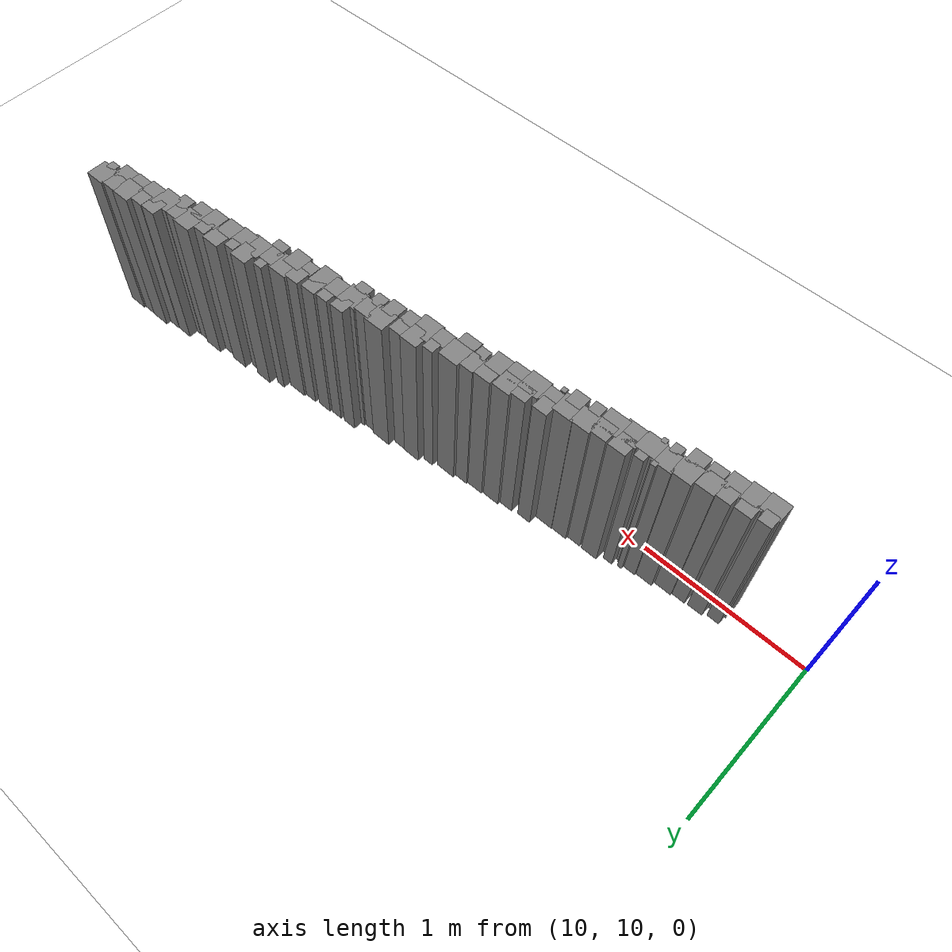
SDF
<sdf version="1.6">
 <world name="default">
  <model name="group_249">
   <pose>10.46 9.95 0.5 0 0 0</pose>
   <static>true</static>
   <link name="link">
    <collision name="collision"><geometry><box><size>0.0 0.0 1</size></box></geometry></collision>
    <visual name="visual">
     <geometry><box><size>0.0 0.0 1</size></box></geometry>
     <material><ambient>0.5 0.5 0.5 1</ambient></material>
    </visual>
   </link>
  </model>
  <model name="group_250">
   <pose>10.51 9.99 0.5 0 0 0</pose>
   <static>true</static>
   <link name="link">
    <collision name="collision">
     <geometry><box><size>0.10720809573338899 0.10720809573338899 1</size></box></geometry>
    </collision>
    <visual name="visual">
     <geometry><box><size>0.10720809573338899 0.10720809573338899 1</size></box></geometry>
     <material><ambient>0.5 0.5 0.5 1</ambient></material>
    </visual>
   </link>
  </model>
  <model name="group_251">
   <pose>10.50 10.06 0.5 0 0 0</pose>
   <static>true</static>
   <link name="link">
    <collision name="collision">
     <geometry><box><size>0.07280795788523292 0.07280795788523292 1</size></box></geometry>
    </collision>
    <visual name="visual">
     <geometry><box><size>0.07280795788523292 0.07280795788523292 1</size></box></geometry>
     <material><ambient>0.5 0.5 0.5 1</ambient></material>
    </visual>
   </link>
  </model>
  <model name="group_256">
   <pose>10.60 10.00 0.5 0 0 0</pose>
   <static>true</static>
   <link name="link">
    <collision name="collision">
     <geometry><box><size>0.11112489812802462 0.11112489812802462 1</size></box></geometry>
    </collision>
    <visual name="visual">
     <geometry><box><size>0.11112489812802462 0.11112489812802462 1</size></box></geometry>
     <material><ambient>0.5 0.5 0.5 1</ambient></material>
    </visual>
   </link>
  </model>
  <model name="group_257">
   <pose>10.60 10.07 0.5 0 0 0</pose>
   <static>true</static>
   <link name="link">
    <collision name="collision">
     <geometry><box><size>0.09070112511455061 0.09070112511455061 1</size></box></geometry>
    </collision>
    <visual name="visual">
     <geometry><box><size>0.09070112511455061 0.09070112511455061 1</size></box></geometry>
     <material><ambient>0.5 0.5 0.5 1</ambient></material>
    </visual>
   </link>
  </model>
  <model name="group_260">
   <pose>10.70 10.01 0.5 0 0 0</pose>
   <static>true</static>
   <link name="link">
    <collision name="collision">
     <geometry><box><size>0.10297681291020644 0.10297681291020644 1</size></box></geometry>
    </collision>
    <visual name="visual">
     <geometry><box><size>0.10297681291020644 0.10297681291020644 1</size></box></geometry>
     <material><ambient>0.5 0.5 0.5 1</ambient></material>
    </visual>
   </link>
  </model>
  <model name="group_261">
   <pose>10.70 10.08 0.5 0 0 0</pose>
   <static>true</static>
   <link name="link">
    <collision name="collision">
     <geometry><box><size>0.08105785199990004 0.08105785199990004 1</size></box></geometry>
    </collision>
    <visual name="visual">
     <geometry><box><size>0.08105785199990004 0.08105785199990004 1</size></box></geometry>
     <material><ambient>0.5 0.5 0.5 1</ambient></material>
    </visual>
   </link>
  </model>
  <model name="group_264">
   <pose>10.79 10.08 0.5 0 0 0</pose>
   <static>true</static>
   <link name="link">
    <collision name="collision">
     <geometry><box><size>0.10297681291020155 0.10297681291020155 1</size></box></geometry>
    </collision>
    <visual name="visual">
     <geometry><box><size>0.10297681291020155 0.10297681291020155 1</size></box></geometry>
     <material><ambient>0.5 0.5 0.5 1</ambient></material>
    </visual>
   </link>
  </model>
  <model name="group_265">
   <pose>10.80 10.02 0.5 0 0 0</pose>
   <static>true</static>
   <link name="link">
    <collision name="collision">
     <geometry><box><size>0.08502194062771413 0.08502194062771413 1</size></box></geometry>
    </collision>
    <visual name="visual">
     <geometry><box><size>0.08502194062771413 0.08502194062771413 1</size></box></geometry>
     <material><ambient>0.5 0.5 0.5 1</ambient></material>
    </visual>
   </link>
  </model>
  <model name="group_268">
   <pose>10.90 10.02 0.5 0 0 0</pose>
   <static>true</static>
   <link name="link">
    <collision name="collision">
     <geometry><box><size>0.09070112511455061 0.09070112511455061 1</size></box></geometry>
    </collision>
    <visual name="visual">
     <geometry><box><size>0.09070112511455061 0.09070112511455061 1</size></box></geometry>
     <material><ambient>0.5 0.5 0.5 1</ambient></material>
    </visual>
   </link>
  </model>
  <model name="group_269">
   <pose>10.90 10.10 0.5 0 0 0</pose>
   <static>true</static>
   <link name="link">
    <collision name="collision">
     <geometry><box><size>0.11218382099303449 0.11218382099303449 1</size></box></geometry>
    </collision>
    <visual name="visual">
     <geometry><box><size>0.11218382099303449 0.11218382099303449 1</size></box></geometry>
     <material><ambient>0.5 0.5 0.5 1</ambient></material>
    </visual>
   </link>
  </model>
  <model name="group_272">
   <pose>11.00 10.11 0.5 0 0 0</pose>
   <static>true</static>
   <link name="link">
    <collision name="collision">
     <geometry><box><size>0.11218382099302456 0.11218382099302456 1</size></box></geometry>
    </collision>
    <visual name="visual">
     <geometry><box><size>0.11218382099302456 0.11218382099302456 1</size></box></geometry>
     <material><ambient>0.5 0.5 0.5 1</ambient></material>
    </visual>
   </link>
  </model>
  <model name="group_273">
   <pose>11.00 10.04 0.5 0 0 0</pose>
   <static>true</static>
   <link name="link">
    <collision name="collision">
     <geometry><box><size>0.056280505116430554 0.056280505116430554 1</size></box></geometry>
    </collision>
    <visual name="visual">
     <geometry><box><size>0.056280505116430554 0.056280505116430554 1</size></box></geometry>
     <material><ambient>0.5 0.5 0.5 1</ambient></material>
    </visual>
   </link>
  </model>
  <model name="group_275">
   <pose>11.03 10.17 0.5 0 0 0</pose>
   <static>true</static>
   <link name="link">
    <collision name="collision">
     <geometry><box><size>0.02814025255821355 0.02814025255821355 1</size></box></geometry>
    </collision>
    <visual name="visual">
     <geometry><box><size>0.02814025255821355 0.02814025255821355 1</size></box></geometry>
     <material><ambient>0.5 0.5 0.5 1</ambient></material>
    </visual>
   </link>
  </model>
  <model name="group_278">
   <pose>11.07 10.04 0.5 0 0 0</pose>
   <static>true</static>
   <link name="link">
    <collision name="collision">
     <geometry><box><size>0.02814025255821355 0.02814025255821355 1</size></box></geometry>
    </collision>
    <visual name="visual">
     <geometry><box><size>0.02814025255821355 0.02814025255821355 1</size></box></geometry>
     <material><ambient>0.5 0.5 0.5 1</ambient></material>
    </visual>
   </link>
  </model>
  <model name="group_279">
   <pose>11.10 10.10 0.5 0 0 0</pose>
   <static>true</static>
   <link name="link">
    <collision name="collision">
     <geometry><box><size>0.11145209213377104 0.11145209213377104 1</size></box></geometry>
    </collision>
    <visual name="visual">
     <geometry><box><size>0.11145209213377104 0.11145209213377104 1</size></box></geometry>
     <material><ambient>0.5 0.5 0.5 1</ambient></material>
    </visual>
   </link>
  </model>
  <model name="group_280">
   <pose>11.10 10.17 0.5 0 0 0</pose>
   <static>true</static>
   <link name="link">
    <collision name="collision">
     <geometry><box><size>0.05628050511643065 0.05628050511643065 1</size></box></geometry>
    </collision>
    <visual name="visual">
     <geometry><box><size>0.05628050511643065 0.05628050511643065 1</size></box></geometry>
     <material><ambient>0.5 0.5 0.5 1</ambient></material>
    </visual>
   </link>
  </model>
  <model name="group_285">
   <pose>11.20 10.11 0.5 0 0 0</pose>
   <static>true</static>
   <link name="link">
    <collision name="collision">
     <geometry><box><size>0.11884310777185958 0.11884310777185958 1</size></box></geometry>
    </collision>
    <visual name="visual">
     <geometry><box><size>0.11884310777185958 0.11884310777185958 1</size></box></geometry>
     <material><ambient>0.5 0.5 0.5 1</ambient></material>
    </visual>
   </link>
  </model>
  <model name="group_286">
   <pose>11.20 10.18 0.5 0 0 0</pose>
   <static>true</static>
   <link name="link">
    <collision name="collision">
     <geometry><box><size>0.1011409347177498 0.1011409347177498 1</size></box></geometry>
    </collision>
    <visual name="visual">
     <geometry><box><size>0.1011409347177498 0.1011409347177498 1</size></box></geometry>
     <material><ambient>0.5 0.5 0.5 1</ambient></material>
    </visual>
   </link>
  </model>
  <model name="group_289">
   <pose>11.30 10.12 0.5 0 0 0</pose>
   <static>true</static>
   <link name="link">
    <collision name="collision">
     <geometry><box><size>0.11882612832554124 0.11882612832554124 1</size></box></geometry>
    </collision>
    <visual name="visual">
     <geometry><box><size>0.11882612832554124 0.11882612832554124 1</size></box></geometry>
     <material><ambient>0.5 0.5 0.5 1</ambient></material>
    </visual>
   </link>
  </model>
  <model name="group_290">
   <pose>11.31 10.18 0.5 0 0 0</pose>
   <static>true</static>
   <link name="link">
    <collision name="collision">
     <geometry><box><size>0.09983600535791982 0.09983600535791982 1</size></box></geometry>
    </collision>
    <visual name="visual">
     <geometry><box><size>0.09983600535791982 0.09983600535791982 1</size></box></geometry>
     <material><ambient>0.5 0.5 0.5 1</ambient></material>
    </visual>
   </link>
  </model>
  <model name="group_293">
   <pose>11.40 10.19 0.5 0 0 0</pose>
   <static>true</static>
   <link name="link">
    <collision name="collision">
     <geometry><box><size>0.11218382099302088 0.11218382099302088 1</size></box></geometry>
    </collision>
    <visual name="visual">
     <geometry><box><size>0.11218382099302088 0.11218382099302088 1</size></box></geometry>
     <material><ambient>0.5 0.5 0.5 1</ambient></material>
    </visual>
   </link>
  </model>
  <model name="group_294">
   <pose>11.40 10.11 0.5 0 0 0</pose>
   <static>true</static>
   <link name="link">
    <collision name="collision">
     <geometry><box><size>0.06413786030772303 0.06413786030772303 1</size></box></geometry>
    </collision>
    <visual name="visual">
     <geometry><box><size>0.06413786030772303 0.06413786030772303 1</size></box></geometry>
     <material><ambient>0.5 0.5 0.5 1</ambient></material>
    </visual>
   </link>
  </model>
  <model name="group_297">
   <pose>11.50 10.13 0.5 0 0 0</pose>
   <static>true</static>
   <link name="link">
    <collision name="collision">
     <geometry><box><size>0.0844207576746442 0.0844207576746442 1</size></box></geometry>
    </collision>
    <visual name="visual">
     <geometry><box><size>0.0844207576746442 0.0844207576746442 1</size></box></geometry>
     <material><ambient>0.5 0.5 0.5 1</ambient></material>
    </visual>
   </link>
  </model>
  <model name="group_298">
   <pose>11.50 10.19 0.5 0 0 0</pose>
   <static>true</static>
   <link name="link">
    <collision name="collision">
     <geometry><box><size>0.11941295585761501 0.11941295585761501 1</size></box></geometry>
    </collision>
    <visual name="visual">
     <geometry><box><size>0.11941295585761501 0.11941295585761501 1</size></box></geometry>
     <material><ambient>0.5 0.5 0.5 1</ambient></material>
    </visual>
   </link>
  </model>
  <model name="group_299">
   <pose>11.52 10.26 0.5 0 0 0</pose>
   <static>true</static>
   <link name="link">
    <collision name="collision"><geometry><box><size>0.0 0.0 1</size></box></geometry></collision>
    <visual name="visual">
     <geometry><box><size>0.0 0.0 1</size></box></geometry>
     <material><ambient>0.5 0.5 0.5 1</ambient></material>
    </visual>
   </link>
  </model>
  <model name="group_302">
   <pose>11.59 10.26 0.5 0 0 0</pose>
   <static>true</static>
   <link name="link">
    <collision name="collision">
     <geometry><box><size>0.08442075767464065 0.08442075767464065 1</size></box></geometry>
    </collision>
    <visual name="visual">
     <geometry><box><size>0.08442075767464065 0.08442075767464065 1</size></box></geometry>
     <material><ambient>0.5 0.5 0.5 1</ambient></material>
    </visual>
   </link>
  </model>
  <model name="group_303">
   <pose>11.58 10.13 0.5 0 0 0</pose>
   <static>true</static>
   <link name="link">
    <collision name="collision">
     <geometry><box><size>0.02814025255821355 0.02814025255821355 1</size></box></geometry>
    </collision>
    <visual name="visual">
     <geometry><box><size>0.02814025255821355 0.02814025255821355 1</size></box></geometry>
     <material><ambient>0.5 0.5 0.5 1</ambient></material>
    </visual>
   </link>
  </model>
  <model name="group_304">
   <pose>11.60 10.20 0.5 0 0 0</pose>
   <static>true</static>
   <link name="link">
    <collision name="collision">
     <geometry><box><size>0.09919226406566595 0.09919226406566595 1</size></box></geometry>
    </collision>
    <visual name="visual">
     <geometry><box><size>0.09919226406566595 0.09919226406566595 1</size></box></geometry>
     <material><ambient>0.5 0.5 0.5 1</ambient></material>
    </visual>
   </link>
  </model>
  <model name="group_307">
   <pose>11.70 10.20 0.5 0 0 0</pose>
   <static>true</static>
   <link name="link">
    <collision name="collision">
     <geometry><box><size>0.11941295585761501 0.11941295585761501 1</size></box></geometry>
    </collision>
    <visual name="visual">
     <geometry><box><size>0.11941295585761501 0.11941295585761501 1</size></box></geometry>
     <material><ambient>0.5 0.5 0.5 1</ambient></material>
    </visual>
   </link>
  </model>
  <model name="group_308">
   <pose>11.71 10.27 0.5 0 0 0</pose>
   <static>true</static>
   <link name="link">
    <collision name="collision">
     <geometry><box><size>0.08785281721401302 0.08785281721401302 1</size></box></geometry>
    </collision>
    <visual name="visual">
     <geometry><box><size>0.08785281721401302 0.08785281721401302 1</size></box></geometry>
     <material><ambient>0.5 0.5 0.5 1</ambient></material>
    </visual>
   </link>
  </model>
  <model name="group_311">
   <pose>11.80 10.28 0.5 0 0 0</pose>
   <static>true</static>
   <link name="link">
    <collision name="collision">
     <geometry><box><size>0.10491580295588307 0.10491580295588307 1</size></box></geometry>
    </collision>
    <visual name="visual">
     <geometry><box><size>0.10491580295588307 0.10491580295588307 1</size></box></geometry>
     <material><ambient>0.5 0.5 0.5 1</ambient></material>
    </visual>
   </link>
  </model>
  <model name="group_312">
   <pose>11.80 10.21 0.5 0 0 0</pose>
   <static>true</static>
   <link name="link">
    <collision name="collision">
     <geometry><box><size>0.10881582679462061 0.10881582679462061 1</size></box></geometry>
    </collision>
    <visual name="visual">
     <geometry><box><size>0.10881582679462061 0.10881582679462061 1</size></box></geometry>
     <material><ambient>0.5 0.5 0.5 1</ambient></material>
    </visual>
   </link>
  </model>
  <model name="group_315">
   <pose>11.90 10.22 0.5 0 0 0</pose>
   <static>true</static>
   <link name="link">
    <collision name="collision">
     <geometry><box><size>0.10727440747194315 0.10727440747194315 1</size></box></geometry>
    </collision>
    <visual name="visual">
     <geometry><box><size>0.10727440747194315 0.10727440747194315 1</size></box></geometry>
     <material><ambient>0.5 0.5 0.5 1</ambient></material>
    </visual>
   </link>
  </model>
  <model name="group_316">
   <pose>11.91 10.29 0.5 0 0 0</pose>
   <static>true</static>
   <link name="link">
    <collision name="collision">
     <geometry><box><size>0.10297681291020826 0.10297681291020826 1</size></box></geometry>
    </collision>
    <visual name="visual">
     <geometry><box><size>0.10297681291020826 0.10297681291020826 1</size></box></geometry>
     <material><ambient>0.5 0.5 0.5 1</ambient></material>
    </visual>
   </link>
  </model>
  <model name="group_319">
   <pose>12.00 10.23 0.5 0 0 0</pose>
   <static>true</static>
   <link name="link">
    <collision name="collision">
     <geometry><box><size>0.06413786030771806 0.06413786030771806 1</size></box></geometry>
    </collision>
    <visual name="visual">
     <geometry><box><size>0.06413786030771806 0.06413786030771806 1</size></box></geometry>
     <material><ambient>0.5 0.5 0.5 1</ambient></material>
    </visual>
   </link>
  </model>
  <model name="group_320">
   <pose>12.01 10.30 0.5 0 0 0</pose>
   <static>true</static>
   <link name="link">
    <collision name="collision">
     <geometry><box><size>0.10185609435833401 0.10185609435833401 1</size></box></geometry>
    </collision>
    <visual name="visual">
     <geometry><box><size>0.10185609435833401 0.10185609435833401 1</size></box></geometry>
     <material><ambient>0.5 0.5 0.5 1</ambient></material>
    </visual>
   </link>
  </model>
  <model name="group_323">
   <pose>12.09 10.24 0.5 0 0 0</pose>
   <static>true</static>
   <link name="link">
    <collision name="collision">
     <geometry><box><size>0.10632897044420112 0.10632897044420112 1</size></box></geometry>
    </collision>
    <visual name="visual">
     <geometry><box><size>0.10632897044420112 0.10632897044420112 1</size></box></geometry>
     <material><ambient>0.5 0.5 0.5 1</ambient></material>
    </visual>
   </link>
  </model>
  <model name="group_324">
   <pose>12.10 10.31 0.5 0 0 0</pose>
   <static>true</static>
   <link name="link">
    <collision name="collision">
     <geometry><box><size>0.11941295585761501 0.11941295585761501 1</size></box></geometry>
    </collision>
    <visual name="visual">
     <geometry><box><size>0.11941295585761501 0.11941295585761501 1</size></box></geometry>
     <material><ambient>0.5 0.5 0.5 1</ambient></material>
    </visual>
   </link>
  </model>
  <model name="group_327">
   <pose>12.17 10.25 0.5 0 0 0</pose>
   <static>true</static>
   <link name="link">
    <collision name="collision"><geometry><box><size>0.0 0.0 1</size></box></geometry></collision>
    <visual name="visual">
     <geometry><box><size>0.0 0.0 1</size></box></geometry>
     <material><ambient>0.5 0.5 0.5 1</ambient></material>
    </visual>
   </link>
  </model>
  <model name="group_328">
   <pose>12.20 10.29 0.5 0 0 0</pose>
   <static>true</static>
   <link name="link">
    <collision name="collision">
     <geometry><box><size>0.09244449216997254 0.09244449216997254 1</size></box></geometry>
    </collision>
    <visual name="visual">
     <geometry><box><size>0.09244449216997254 0.09244449216997254 1</size></box></geometry>
     <material><ambient>0.5 0.5 0.5 1</ambient></material>
    </visual>
   </link>
  </model>
  <model name="group_329">
   <pose>12.21 10.36 0.5 0 0 0</pose>
   <static>true</static>
   <link name="link">
    <collision name="collision">
     <geometry><box><size>0.06413786030771658 0.06413786030771658 1</size></box></geometry>
    </collision>
    <visual name="visual">
     <geometry><box><size>0.06413786030771658 0.06413786030771658 1</size></box></geometry>
     <material><ambient>0.5 0.5 0.5 1</ambient></material>
    </visual>
   </link>
  </model>
  <model name="group_332">
   <pose>12.30 10.30 0.5 0 0 0</pose>
   <static>true</static>
   <link name="link">
    <collision name="collision">
     <geometry><box><size>0.12787992062458453 0.12787992062458453 1</size></box></geometry>
    </collision>
    <visual name="visual">
     <geometry><box><size>0.12787992062458453 0.12787992062458453 1</size></box></geometry>
     <material><ambient>0.5 0.5 0.5 1</ambient></material>
    </visual>
   </link>
  </model>
  <model name="group_333">
   <pose>12.31 10.37 0.5 0 0 0</pose>
   <static>true</static>
   <link name="link">
    <collision name="collision">
     <geometry><box><size>0.10614484965121197 0.10614484965121197 1</size></box></geometry>
    </collision>
    <visual name="visual">
     <geometry><box><size>0.10614484965121197 0.10614484965121197 1</size></box></geometry>
     <material><ambient>0.5 0.5 0.5 1</ambient></material>
    </visual>
   </link>
  </model>
  <model name="group_336">
   <pose>12.40 10.31 0.5 0 0 0</pose>
   <static>true</static>
   <link name="link">
    <collision name="collision">
     <geometry><box><size>0.07960863723841435 0.07960863723841435 1</size></box></geometry>
    </collision>
    <visual name="visual">
     <geometry><box><size>0.07960863723841435 0.07960863723841435 1</size></box></geometry>
     <material><ambient>0.5 0.5 0.5 1</ambient></material>
    </visual>
   </link>
  </model>
  <model name="group_337">
   <pose>12.40 10.38 0.5 0 0 0</pose>
   <static>true</static>
   <link name="link">
    <collision name="collision">
     <geometry><box><size>0.07960863723840898 0.07960863723840898 1</size></box></geometry>
    </collision>
    <visual name="visual">
     <geometry><box><size>0.07960863723840898 0.07960863723840898 1</size></box></geometry>
     <material><ambient>0.5 0.5 0.5 1</ambient></material>
    </visual>
   </link>
  </model>
  <model name="group_340">
   <pose>12.50 10.32 0.5 0 0 0</pose>
   <static>true</static>
   <link name="link">
    <collision name="collision">
     <geometry><box><size>0.0907011251145563 0.0907011251145563 1</size></box></geometry>
    </collision>
    <visual name="visual">
     <geometry><box><size>0.0907011251145563 0.0907011251145563 1</size></box></geometry>
     <material><ambient>0.5 0.5 0.5 1</ambient></material>
    </visual>
   </link>
  </model>
  <model name="group_341">
   <pose>12.51 10.40 0.5 0 0 0</pose>
   <static>true</static>
   <link name="link">
    <collision name="collision">
     <geometry><box><size>0.12039171518390318 0.12039171518390318 1</size></box></geometry>
    </collision>
    <visual name="visual">
     <geometry><box><size>0.12039171518390318 0.12039171518390318 1</size></box></geometry>
     <material><ambient>0.5 0.5 0.5 1</ambient></material>
    </visual>
   </link>
  </model>
  <model name="group_344">
   <pose>12.59 10.33 0.5 0 0 0</pose>
   <static>true</static>
   <link name="link">
    <collision name="collision">
     <geometry><box><size>0.07280795788523782 0.07280795788523782 1</size></box></geometry>
    </collision>
    <visual name="visual">
     <geometry><box><size>0.07280795788523782 0.07280795788523782 1</size></box></geometry>
     <material><ambient>0.5 0.5 0.5 1</ambient></material>
    </visual>
   </link>
  </model>
  <model name="group_345">
   <pose>12.60 10.40 0.5 0 0 0</pose>
   <static>true</static>
   <link name="link">
    <collision name="collision">
     <geometry><box><size>0.09919226406567094 0.09919226406567094 1</size></box></geometry>
    </collision>
    <visual name="visual">
     <geometry><box><size>0.09919226406567094 0.09919226406567094 1</size></box></geometry>
     <material><ambient>0.5 0.5 0.5 1</ambient></material>
    </visual>
   </link>
  </model>
  <model name="group_348">
   <pose>12.70 10.34 0.5 0 0 0</pose>
   <static>true</static>
   <link name="link">
    <collision name="collision">
     <geometry><box><size>0.0844207576746442 0.0844207576746442 1</size></box></geometry>
    </collision>
    <visual name="visual">
     <geometry><box><size>0.0844207576746442 0.0844207576746442 1</size></box></geometry>
     <material><ambient>0.5 0.5 0.5 1</ambient></material>
    </visual>
   </link>
  </model>
  <model name="group_349">
   <pose>12.70 10.40 0.5 0 0 0</pose>
   <static>true</static>
   <link name="link">
    <collision name="collision">
     <geometry><box><size>0.11941295585761733 0.11941295585761733 1</size></box></geometry>
    </collision>
    <visual name="visual">
     <geometry><box><size>0.11941295585761733 0.11941295585761733 1</size></box></geometry>
     <material><ambient>0.5 0.5 0.5 1</ambient></material>
    </visual>
   </link>
  </model>
  <model name="group_350">
   <pose>12.71 10.47 0.5 0 0 0</pose>
   <static>true</static>
   <link name="link">
    <collision name="collision">
     <geometry><box><size>0.0844207576746442 0.0844207576746442 1</size></box></geometry>
    </collision>
    <visual name="visual">
     <geometry><box><size>0.0844207576746442 0.0844207576746442 1</size></box></geometry>
     <material><ambient>0.5 0.5 0.5 1</ambient></material>
    </visual>
   </link>
  </model>
  <model name="group_353">
   <pose>12.80 10.41 0.5 0 0 0</pose>
   <static>true</static>
   <link name="link">
    <collision name="collision">
     <geometry><box><size>0.09919226406566818 0.09919226406566818 1</size></box></geometry>
    </collision>
    <visual name="visual">
     <geometry><box><size>0.09919226406566818 0.09919226406566818 1</size></box></geometry>
     <material><ambient>0.5 0.5 0.5 1</ambient></material>
    </visual>
   </link>
  </model>
  <model name="group_354">
   <pose>12.81 10.48 0.5 0 0 0</pose>
   <static>true</static>
   <link name="link">
    <collision name="collision">
     <geometry><box><size>0.07280795788523782 0.07280795788523782 1</size></box></geometry>
    </collision>
    <visual name="visual">
     <geometry><box><size>0.07280795788523782 0.07280795788523782 1</size></box></geometry>
     <material><ambient>0.5 0.5 0.5 1</ambient></material>
    </visual>
   </link>
  </model>
  <model name="group_356">
   <pose>12.89 10.41 0.5 0 0 0</pose>
   <static>true</static>
   <link name="link">
    <collision name="collision">
     <geometry><box><size>0.12039171518390533 0.12039171518390533 1</size></box></geometry>
    </collision>
    <visual name="visual">
     <geometry><box><size>0.12039171518390533 0.12039171518390533 1</size></box></geometry>
     <material><ambient>0.5 0.5 0.5 1</ambient></material>
    </visual>
   </link>
  </model>
  <model name="group_357">
   <pose>12.90 10.48 0.5 0 0 0</pose>
   <static>true</static>
   <link name="link">
    <collision name="collision">
     <geometry><box><size>0.0907011251145563 0.0907011251145563 1</size></box></geometry>
    </collision>
    <visual name="visual">
     <geometry><box><size>0.0907011251145563 0.0907011251145563 1</size></box></geometry>
     <material><ambient>0.5 0.5 0.5 1</ambient></material>
    </visual>
   </link>
  </model>
  <model name="group_361">
   <pose>12.99 10.42 0.5 0 0 0</pose>
   <static>true</static>
   <link name="link">
    <collision name="collision">
     <geometry><box><size>0.07321409456274253 0.07321409456274253 1</size></box></geometry>
    </collision>
    <visual name="visual">
     <geometry><box><size>0.07321409456274253 0.07321409456274253 1</size></box></geometry>
     <material><ambient>0.5 0.5 0.5 1</ambient></material>
    </visual>
   </link>
  </model>
  <model name="group_362">
   <pose>13.01 10.49 0.5 0 0 0</pose>
   <static>true</static>
   <link name="link">
    <collision name="collision">
     <geometry><box><size>0.09065163049001222 0.09065163049001222 1</size></box></geometry>
    </collision>
    <visual name="visual">
     <geometry><box><size>0.09065163049001222 0.09065163049001222 1</size></box></geometry>
     <material><ambient>0.5 0.5 0.5 1</ambient></material>
    </visual>
   </link>
  </model>
  <model name="group_363">
   <pose>13.08 10.42 0.5 0 0 0</pose>
   <static>true</static>
   <link name="link">
    <collision name="collision">
     <geometry><box><size>0.10632897044419762 0.10632897044419762 1</size></box></geometry>
    </collision>
    <visual name="visual">
     <geometry><box><size>0.10632897044419762 0.10632897044419762 1</size></box></geometry>
     <material><ambient>0.5 0.5 0.5 1</ambient></material>
    </visual>
   </link>
  </model>
  <model name="group_364">
   <pose>13.10 10.49 0.5 0 0 0</pose>
   <static>true</static>
   <link name="link">
    <collision name="collision">
     <geometry><box><size>0.11941295585761305 0.11941295585761305 1</size></box></geometry>
    </collision>
    <visual name="visual">
     <geometry><box><size>0.11941295585761305 0.11941295585761305 1</size></box></geometry>
     <material><ambient>0.5 0.5 0.5 1</ambient></material>
    </visual>
   </link>
  </model>
  <model name="group_369">
   <pose>13.21 10.43 0.5 0 0 0</pose>
   <static>true</static>
   <link name="link">
    <collision name="collision">
     <geometry><box><size>0.0844207576746441 0.0844207576746441 1</size></box></geometry>
    </collision>
    <visual name="visual">
     <geometry><box><size>0.0844207576746441 0.0844207576746441 1</size></box></geometry>
     <material><ambient>0.5 0.5 0.5 1</ambient></material>
    </visual>
   </link>
  </model>
  <model name="group_370">
   <pose>13.20 10.49 0.5 0 0 0</pose>
   <static>true</static>
   <link name="link">
    <collision name="collision">
     <geometry><box><size>0.09919226406566373 0.09919226406566373 1</size></box></geometry>
    </collision>
    <visual name="visual">
     <geometry><box><size>0.09919226406566373 0.09919226406566373 1</size></box></geometry>
     <material><ambient>0.5 0.5 0.5 1</ambient></material>
    </visual>
   </link>
  </model>
  <model name="group_371">
   <pose>13.20 10.56 0.5 0 0 0</pose>
   <static>true</static>
   <link name="link">
    <collision name="collision">
     <geometry><box><size>0.0562805051164271 0.0562805051164271 1</size></box></geometry>
    </collision>
    <visual name="visual">
     <geometry><box><size>0.0562805051164271 0.0562805051164271 1</size></box></geometry>
     <material><ambient>0.5 0.5 0.5 1</ambient></material>
    </visual>
   </link>
  </model>
  <model name="group_372">
   <pose>13.30 10.50 0.5 0 0 0</pose>
   <static>true</static>
   <link name="link">
    <collision name="collision">
     <geometry><box><size>0.11941295585762002 0.11941295585762002 1</size></box></geometry>
    </collision>
    <visual name="visual">
     <geometry><box><size>0.11941295585762002 0.11941295585762002 1</size></box></geometry>
     <material><ambient>0.5 0.5 0.5 1</ambient></material>
    </visual>
   </link>
  </model>
  <model name="group_373">
   <pose>13.31 10.57 0.5 0 0 0</pose>
   <static>true</static>
   <link name="link">
    <collision name="collision">
     <geometry><box><size>0.10632897044420112 0.10632897044420112 1</size></box></geometry>
    </collision>
    <visual name="visual">
     <geometry><box><size>0.10632897044420112 0.10632897044420112 1</size></box></geometry>
     <material><ambient>0.5 0.5 0.5 1</ambient></material>
    </visual>
   </link>
  </model>
  <model name="group_378">
   <pose>13.39 10.50 0.5 0 0 0</pose>
   <static>true</static>
   <link name="link">
    <collision name="collision">
     <geometry><box><size>0.10185609435834389 0.10185609435834389 1</size></box></geometry>
    </collision>
    <visual name="visual">
     <geometry><box><size>0.10185609435834389 0.10185609435834389 1</size></box></geometry>
     <material><ambient>0.5 0.5 0.5 1</ambient></material>
    </visual>
   </link>
  </model>
  <model name="group_379">
   <pose>13.40 10.57 0.5 0 0 0</pose>
   <static>true</static>
   <link name="link">
    <collision name="collision">
     <geometry><box><size>0.06413786030771658 0.06413786030771658 1</size></box></geometry>
    </collision>
    <visual name="visual">
     <geometry><box><size>0.06413786030771658 0.06413786030771658 1</size></box></geometry>
     <material><ambient>0.5 0.5 0.5 1</ambient></material>
    </visual>
   </link>
  </model>
  <model name="group_380">
   <pose>13.49 10.51 0.5 0 0 0</pose>
   <static>true</static>
   <link name="link">
    <collision name="collision">
     <geometry><box><size>0.10297681291020461 0.10297681291020461 1</size></box></geometry>
    </collision>
    <visual name="visual">
     <geometry><box><size>0.10297681291020461 0.10297681291020461 1</size></box></geometry>
     <material><ambient>0.5 0.5 0.5 1</ambient></material>
    </visual>
   </link>
  </model>
  <model name="group_381">
   <pose>13.50 10.59 0.5 0 0 0</pose>
   <static>true</static>
   <link name="link">
    <collision name="collision">
     <geometry><box><size>0.10727440747194476 0.10727440747194476 1</size></box></geometry>
    </collision>
    <visual name="visual">
     <geometry><box><size>0.10727440747194476 0.10727440747194476 1</size></box></geometry>
     <material><ambient>0.5 0.5 0.5 1</ambient></material>
    </visual>
   </link>
  </model>
  <model name="group_385">
   <pose>13.60 10.52 0.5 0 0 0</pose>
   <static>true</static>
   <link name="link">
    <collision name="collision">
     <geometry><box><size>0.10491580295588597 0.10491580295588597 1</size></box></geometry>
    </collision>
    <visual name="visual">
     <geometry><box><size>0.10491580295588597 0.10491580295588597 1</size></box></geometry>
     <material><ambient>0.5 0.5 0.5 1</ambient></material>
    </visual>
   </link>
  </model>
  <model name="group_386">
   <pose>13.60 10.59 0.5 0 0 0</pose>
   <static>true</static>
   <link name="link">
    <collision name="collision">
     <geometry><box><size>0.07960863723841435 0.07960863723841435 1</size></box></geometry>
    </collision>
    <visual name="visual">
     <geometry><box><size>0.07960863723841435 0.07960863723841435 1</size></box></geometry>
     <material><ambient>0.5 0.5 0.5 1</ambient></material>
    </visual>
   </link>
  </model>
  <model name="group_388">
   <pose>13.70 10.53 0.5 0 0 0</pose>
   <static>true</static>
   <link name="link">
    <collision name="collision">
     <geometry><box><size>0.09657300224092608 0.09657300224092608 1</size></box></geometry>
    </collision>
    <visual name="visual">
     <geometry><box><size>0.09657300224092608 0.09657300224092608 1</size></box></geometry>
     <material><ambient>0.5 0.5 0.5 1</ambient></material>
    </visual>
   </link>
  </model>
  <model name="group_389">
   <pose>13.70 10.61 0.5 0 0 0</pose>
   <static>true</static>
   <link name="link">
    <collision name="collision">
     <geometry><box><size>0.11941295585761501 0.11941295585761501 1</size></box></geometry>
    </collision>
    <visual name="visual">
     <geometry><box><size>0.11941295585761501 0.11941295585761501 1</size></box></geometry>
     <material><ambient>0.5 0.5 0.5 1</ambient></material>
    </visual>
   </link>
  </model>
  <model name="group_393">
   <pose>13.81 10.55 0.5 0 0 0</pose>
   <static>true</static>
   <link name="link">
    <collision name="collision">
     <geometry><box><size>0.08442075767464055 0.08442075767464055 1</size></box></geometry>
    </collision>
    <visual name="visual">
     <geometry><box><size>0.08442075767464055 0.08442075767464055 1</size></box></geometry>
     <material><ambient>0.5 0.5 0.5 1</ambient></material>
    </visual>
   </link>
  </model>
  <model name="group_394">
   <pose>13.80 10.61 0.5 0 0 0</pose>
   <static>true</static>
   <link name="link">
    <collision name="collision">
     <geometry><box><size>0.09919226406567094 0.09919226406567094 1</size></box></geometry>
    </collision>
    <visual name="visual">
     <geometry><box><size>0.09919226406567094 0.09919226406567094 1</size></box></geometry>
     <material><ambient>0.5 0.5 0.5 1</ambient></material>
    </visual>
   </link>
  </model>
  <model name="group_396">
   <pose>13.83 10.67 0.5 0 0 0</pose>
   <static>true</static>
   <link name="link">
    <collision name="collision"><geometry><box><size>0.0 0.0 1</size></box></geometry></collision>
    <visual name="visual">
     <geometry><box><size>0.0 0.0 1</size></box></geometry>
     <material><ambient>0.5 0.5 0.5 1</ambient></material>
    </visual>
   </link>
  </model>
  <model name="group_397">
   <pose>13.89 10.60 0.5 0 0 0</pose>
   <static>true</static>
   <link name="link">
    <collision name="collision">
     <geometry><box><size>0.12218741302868898 0.12218741302868898 1</size></box></geometry>
    </collision>
    <visual name="visual">
     <geometry><box><size>0.12218741302868898 0.12218741302868898 1</size></box></geometry>
     <material><ambient>0.5 0.5 0.5 1</ambient></material>
    </visual>
   </link>
  </model>
  <model name="group_398">
   <pose>13.91 10.67 0.5 0 0 0</pose>
   <static>true</static>
   <link name="link">
    <collision name="collision">
     <geometry><box><size>0.09657300224093303 0.09657300224093303 1</size></box></geometry>
    </collision>
    <visual name="visual">
     <geometry><box><size>0.09657300224093303 0.09657300224093303 1</size></box></geometry>
     <material><ambient>0.5 0.5 0.5 1</ambient></material>
    </visual>
   </link>
  </model>
  <model name="group_401">
   <pose>13.88 10.55 0.5 0 0 0</pose>
   <static>true</static>
   <link name="link">
    <collision name="collision"><geometry><box><size>0.0 0.0 1</size></box></geometry></collision>
    <visual name="visual">
     <geometry><box><size>0.0 0.0 1</size></box></geometry>
     <material><ambient>0.5 0.5 0.5 1</ambient></material>
    </visual>
   </link>
  </model>
  <model name="group_402">
   <pose>14.00 10.61 0.5 0 0 0</pose>
   <static>true</static>
   <link name="link">
    <collision name="collision">
     <geometry><box><size>0.10584828742140504 0.10584828742140504 1</size></box></geometry>
    </collision>
    <visual name="visual">
     <geometry><box><size>0.10584828742140504 0.10584828742140504 1</size></box></geometry>
     <material><ambient>0.5 0.5 0.5 1</ambient></material>
    </visual>
   </link>
  </model>
  <model name="group_403">
   <pose>14.00 10.68 0.5 0 0 0</pose>
   <static>true</static>
   <link name="link">
    <collision name="collision">
     <geometry><box><size>0.08105785199990004 0.08105785199990004 1</size></box></geometry>
    </collision>
    <visual name="visual">
     <geometry><box><size>0.08105785199990004 0.08105785199990004 1</size></box></geometry>
     <material><ambient>0.5 0.5 0.5 1</ambient></material>
    </visual>
   </link>
  </model>
  <model name="group_406">
   <pose>14.10 10.62 0.5 0 0 0</pose>
   <static>true</static>
   <link name="link">
    <collision name="collision">
     <geometry><box><size>0.09657300224092955 0.09657300224092955 1</size></box></geometry>
    </collision>
    <visual name="visual">
     <geometry><box><size>0.09657300224092955 0.09657300224092955 1</size></box></geometry>
     <material><ambient>0.5 0.5 0.5 1</ambient></material>
    </visual>
   </link>
  </model>
  <model name="group_407">
   <pose>14.10 10.69 0.5 0 0 0</pose>
   <static>true</static>
   <link name="link">
    <collision name="collision">
     <geometry><box><size>0.12154725287973955 0.12154725287973955 1</size></box></geometry>
    </collision>
    <visual name="visual">
     <geometry><box><size>0.12154725287973955 0.12154725287973955 1</size></box></geometry>
     <material><ambient>0.5 0.5 0.5 1</ambient></material>
    </visual>
   </link>
  </model>
  <model name="group_410">
   <pose>14.20 10.63 0.5 0 0 0</pose>
   <static>true</static>
   <link name="link">
    <collision name="collision">
     <geometry><box><size>0.10632897044420045 0.10632897044420045 1</size></box></geometry>
    </collision>
    <visual name="visual">
     <geometry><box><size>0.10632897044420045 0.10632897044420045 1</size></box></geometry>
     <material><ambient>0.5 0.5 0.5 1</ambient></material>
    </visual>
   </link>
  </model>
  <model name="group_411">
   <pose>14.20 10.70 0.5 0 0 0</pose>
   <static>true</static>
   <link name="link">
    <collision name="collision">
     <geometry><box><size>0.09919226406567094 0.09919226406567094 1</size></box></geometry>
    </collision>
    <visual name="visual">
     <geometry><box><size>0.09919226406567094 0.09919226406567094 1</size></box></geometry>
     <material><ambient>0.5 0.5 0.5 1</ambient></material>
    </visual>
   </link>
  </model>
  <model name="group_414">
   <pose>14.30 10.70 0.5 0 0 0</pose>
   <static>true</static>
   <link name="link">
    <collision name="collision">
     <geometry><box><size>0.11941295585761268 0.11941295585761268 1</size></box></geometry>
    </collision>
    <visual name="visual">
     <geometry><box><size>0.11941295585761268 0.11941295585761268 1</size></box></geometry>
     <material><ambient>0.5 0.5 0.5 1</ambient></material>
    </visual>
   </link>
  </model>
  <model name="group_417">
   <pose>14.30 10.64 0.5 0 0 0</pose>
   <static>true</static>
   <link name="link">
    <collision name="collision">
     <geometry><box><size>0.0562805051164271 0.0562805051164271 1</size></box></geometry>
    </collision>
    <visual name="visual">
     <geometry><box><size>0.0562805051164271 0.0562805051164271 1</size></box></geometry>
     <material><ambient>0.5 0.5 0.5 1</ambient></material>
    </visual>
   </link>
  </model>
  <model name="ground_plane">
   <static>true</static>
   <link name="link">
    <collision name="collision">
     <geometry><plane><normal>0 0 1</normal><size>100 100</size></plane></geometry>
    </collision>
    <visual name="visual">
     <geometry><plane><normal>0 0 1</normal><size>100 100</size></plane></geometry>
     <material><ambient>1 1 1 1</ambient></material>
    </visual>
   </link>
  </model>
 </world>
</sdf>
